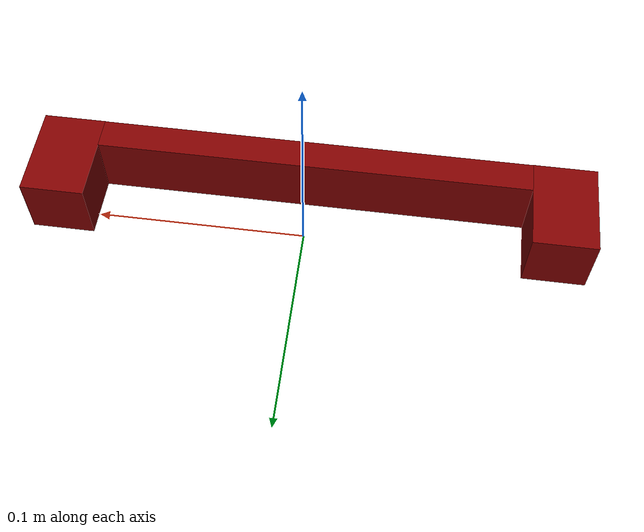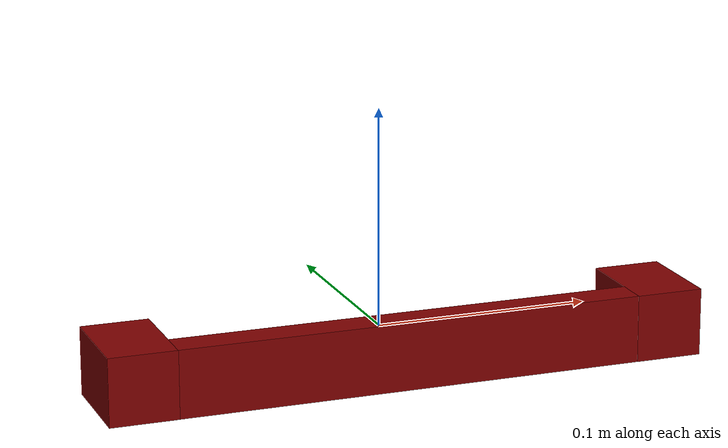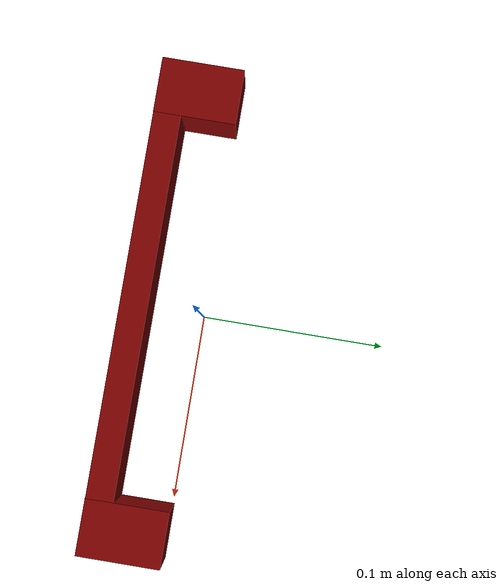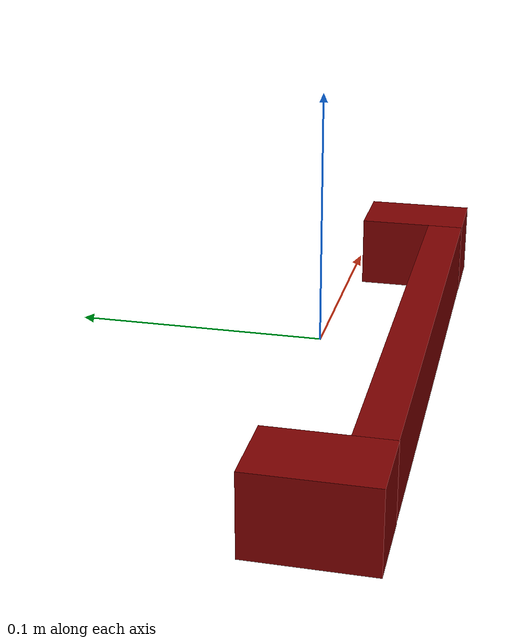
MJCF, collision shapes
<?xml version="1.0" ?>
<mujoco model="model">
    <compiler angle="radian"/>
    <asset>
        <mesh file="visuals/CabinetHandle004.obj" name="mesh"/>
        <texture file="visuals/T_CabinetHandle004_BC001.png" name="text" type="2d"/>
        <material name="mat" rgba="1 1 1 1" texture="text"/>
    </asset>
    <default>
        <default class="visual">
            <geom conaffinity="0" contype="0" group="1" type="mesh"/>
        </default>
        <default class="collision">
            <geom group="0" rgba="0.5 0 0 0.5"/>
        </default>
    </default>
    <worldbody>
        <body>
            <body name="object">
                <geom mesh="mesh" type="mesh" solimp="0.998 0.998 0.001" solref="0.001 1" density="100" friction="0.95 0.3 0.1" class="visual" material="mat"/>
                <geom class="collision" type="box" pos="-0.12198906391859055 -0.023006310686469078 0.0" size="0.015403694473206997 0.022924408316612244 0.015403694473206997" quat="1.0 0.0 0.0 0.0" name="handle_connector_top"/>
                <geom class="collision" type="box" pos="0.1217641532421112 -0.023006310686469078 0.0" size="0.015403694473206997 0.022924408316612244 0.015403694473206997" quat="1.0 0.0 0.0 0.0" name="handle_connector_bottom"/>
                <geom class="collision" type="box" pos="-0.00010850653052330017 -0.03815648332238197 0.0" size="0.007646866142749786 0.10662992298603058 0.015403693541884422" quat="0.7071067690849304 0.0 -0.0 -0.7071067690849304" name="handle"/>
            </body>
        </body>
    </worldbody>
    <actuator/>
</mujoco>
